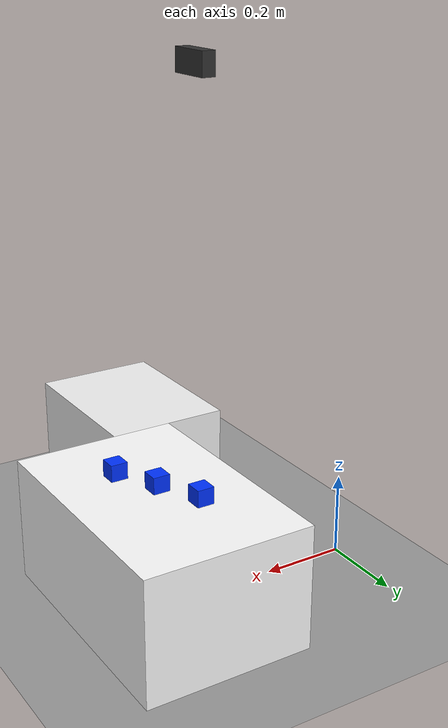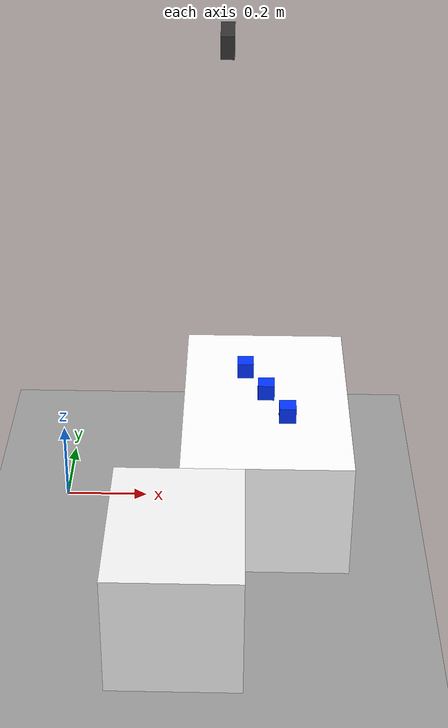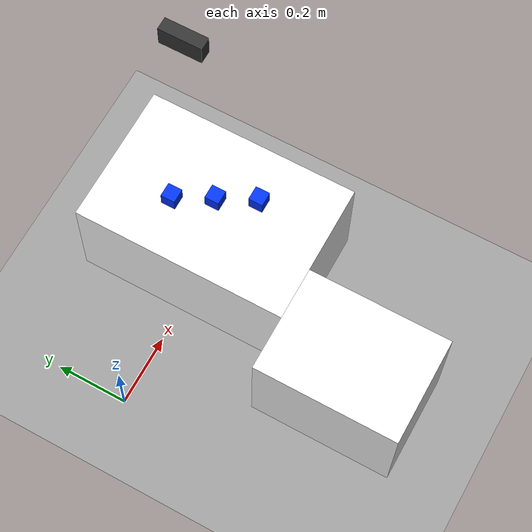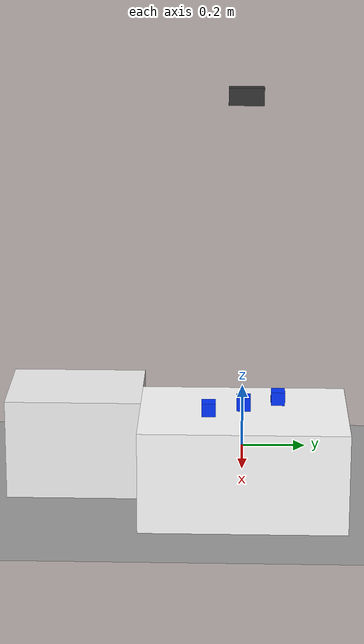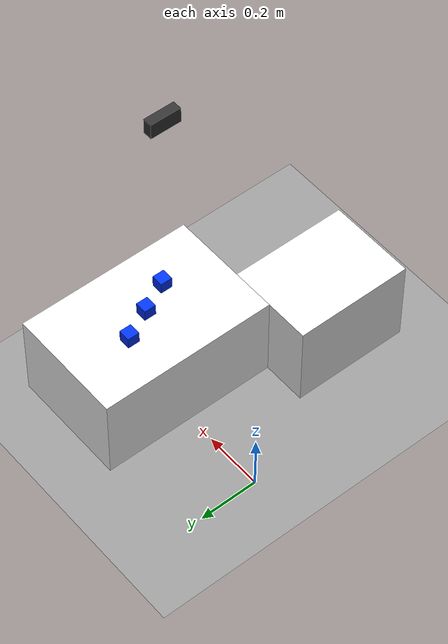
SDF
<?xml version="1.0" ?>
<!--
  Pick and Place World for ME5250 Bin Picking Project
  Abdul Rahman - Northeastern University
-->
<sdf version='1.10'>
  <world name='pick_place_world'>
    <physics name='1ms' type='ignored'>
      <max_step_size>0.001</max_step_size>
      <real_time_factor>1</real_time_factor>
      <real_time_update_rate>1000</real_time_update_rate>
    </physics>
    <plugin name='gz::sim::systems::Physics' filename='gz-sim-physics-system'/>
    <plugin name='gz::sim::systems::UserCommands' filename='gz-sim-user-commands-system'/>
    <plugin name='gz::sim::systems::SceneBroadcaster' filename='gz-sim-scene-broadcaster-system'/>
    <plugin name='gz::sim::systems::Contact' filename='gz-sim-contact-system'/>
    <plugin filename="gz-sim-sensors-system" name="gz::sim::systems::Sensors">
      <render_engine>ogre2</render_engine>
    </plugin>

    <gravity>0 0 -9.8</gravity>
    <magnetic_field>5.5645e-06 2.28758e-05 -4.23884e-05</magnetic_field>
    <atmosphere type='adiabatic'/>

    <scene>
      <ambient>0.4 0.4 0.4 1</ambient>
      <background>0.7 0.7 0.7 1</background>
      <shadows>true</shadows>
    </scene>

    <!-- Ground Plane -->
    <model name='ground_plane'>
      <static>true</static>
      <link name='link'>
        <collision name='collision'>
          <geometry>
            <plane>
              <normal>0 0 1</normal>
              <size>5 5</size>
            </plane>
          </geometry>
          <surface>
            <friction>
              <ode>
                <mu>1.0</mu>
                <mu2>1.0</mu2>
              </ode>
            </friction>
          </surface>
        </collision>
        <visual name='visual'>
          <geometry>
            <plane>
              <normal>0 0 1</normal>
              <size>5 5</size>
            </plane>
          </geometry>
          <material>
            <ambient>0.5 0.5 0.5 1</ambient>
            <diffuse>0.6 0.6 0.6 1</diffuse>
          </material>
        </visual>
      </link>
    </model>

    <!-- Sun -->
    <light name='sun' type='directional'>
      <pose>0 0 10 0 0 0</pose>
      <cast_shadows>true</cast_shadows>
      <intensity>1</intensity>
      <direction>-0.5 0.1 -0.9</direction>
      <diffuse>0.8 0.8 0.8 1</diffuse>
      <specular>0.2 0.2 0.2 1</specular>
      <attenuation>
        <range>1000</range>
        <linear>0.01</linear>
        <constant>0.9</constant>
        <quadratic>0.001</quadratic>
      </attenuation>
    </light>

    <!-- Pick Table (low, white, in front of robot) -->
    <model name='pick_table'>
      <static>true</static>
      <pose>0.5 0 0.15 0 0 0</pose>
      <link name='table_link'>
        <collision name='collision'>
          <geometry>
            <box>
              <size>0.4 0.6 0.3</size>
            </box>
          </geometry>
        </collision>
        <visual name='visual'>
          <geometry>
            <box>
              <size>0.4 0.6 0.3</size>
            </box>
          </geometry>
          <material>
            <ambient>0.9 0.9 0.9 1</ambient>
            <diffuse>1.0 1.0 1.0 1</diffuse>
            <specular>0.1 0.1 0.1 1</specular>
          </material>
        </visual>
      </link>
    </model>

    <!-- Place Table (higher, white, on the right side) -->
    <model name='place_table'>
      <static>true</static>
      <pose>0.3 -0.5 0.15 0 0 0</pose>
      <link name='table_link'>
        <collision name='collision'>
          <geometry>
            <box>
              <size>0.3 0.4 0.3</size>
            </box>
          </geometry>
        </collision>
        <visual name='visual'>
          <geometry>
            <box>
              <size>0.3 0.4 0.3</size>
            </box>
          </geometry>
          <material>
            <ambient>0.85 0.85 0.85 1</ambient>
            <diffuse>0.95 0.95 0.95 1</diffuse>
            <specular>0.1 0.1 0.1 1</specular>
          </material>
        </visual>
      </link>
    </model>

    <!-- Blue Cube 1 -->
    <model name="blue_cube_1">
      <pose>0.45 0.1 0.325 0 0 0</pose>
      <link name="link">
        <inertial>
          <mass>0.1</mass>
          <inertia>
            <ixx>0.000017</ixx>
            <iyy>0.000017</iyy>
            <izz>0.000017</izz>
          </inertia>
        </inertial>
        <collision name="collision">
          <geometry>
            <box>
              <size>0.04 0.04 0.04</size>
            </box>
          </geometry>
          <surface>
            <friction>
              <ode>
                <mu>1.0</mu>
                <mu2>1.0</mu2>
              </ode>
            </friction>
          </surface>
        </collision>
        <visual name="visual">
          <geometry>
            <box>
              <size>0.04 0.04 0.04</size>
            </box>
          </geometry>
          <material>
            <ambient>0.0 0.0 0.8 1</ambient>
            <diffuse>0.0 0.2 1.0 1</diffuse>
          </material>
        </visual>
      </link>
    </model>

    <!-- Blue Cube 2 -->
    <model name="blue_cube_2">
      <pose>0.5 0 0.325 0 0 0</pose>
      <link name="link">
        <inertial>
          <mass>0.1</mass>
          <inertia>
            <ixx>0.000017</ixx>
            <iyy>0.000017</iyy>
            <izz>0.000017</izz>
          </inertia>
        </inertial>
        <collision name="collision">
          <geometry>
            <box>
              <size>0.04 0.04 0.04</size>
            </box>
          </geometry>
          <surface>
            <friction>
              <ode>
                <mu>1.0</mu>
                <mu2>1.0</mu2>
              </ode>
            </friction>
          </surface>
        </collision>
        <visual name="visual">
          <geometry>
            <box>
              <size>0.04 0.04 0.04</size>
            </box>
          </geometry>
          <material>
            <ambient>0.0 0.0 0.8 1</ambient>
            <diffuse>0.0 0.2 1.0 1</diffuse>
          </material>
        </visual>
      </link>
    </model>

    <!-- Blue Cube 3 -->
    <model name="blue_cube_3">
      <pose>0.55 -0.1 0.325 0 0 0</pose>
      <link name="link">
        <inertial>
          <mass>0.1</mass>
          <inertia>
            <ixx>0.000017</ixx>
            <iyy>0.000017</iyy>
            <izz>0.000017</izz>
          </inertia>
        </inertial>
        <collision name="collision">
          <geometry>
            <box>
              <size>0.04 0.04 0.04</size>
            </box>
          </geometry>
          <surface>
            <friction>
              <ode>
                <mu>1.0</mu>
                <mu2>1.0</mu2>
              </ode>
            </friction>
          </surface>
        </collision>
        <visual name="visual">
          <geometry>
            <box>
              <size>0.04 0.04 0.04</size>
            </box>
          </geometry>
          <material>
            <ambient>0.0 0.0 0.8 1</ambient>
            <diffuse>0.0 0.2 1.0 1</diffuse>
          </material>
        </visual>
      </link>
    </model>

    <!-- RGB-D Camera (like Intel RealSense) mounted above workspace -->
    <model name="rgbd_camera">
      <static>true</static>
      <pose>0.4 0 1.2 0 1.57 0</pose>
      <link name="camera_link">
        <inertial>
          <mass>0.1</mass>
          <inertia>
            <ixx>0.0001</ixx>
            <iyy>0.0001</iyy>
            <izz>0.0001</izz>
          </inertia>
        </inertial>
        <collision name="collision">
          <geometry>
            <box>
              <size>0.05 0.1 0.03</size>
            </box>
          </geometry>
        </collision>
        <visual name="visual">
          <geometry>
            <box>
              <size>0.05 0.1 0.03</size>
            </box>
          </geometry>
          <material>
            <ambient>0.1 0.1 0.1 1</ambient>
            <diffuse>0.2 0.2 0.2 1</diffuse>
          </material>
        </visual>

        <!-- RGB Camera -->
        <sensor name="rgb_camera" type="camera">
          <pose>0 0 0 0 0 0</pose>
          <camera>
            <horizontal_fov>1.047</horizontal_fov>
            <image>
              <width>640</width>
              <height>480</height>
              <format>R8G8B8</format>
            </image>
            <clip>
              <near>0.1</near>
              <far>10</far>
            </clip>
          </camera>
          <always_on>1</always_on>
          <update_rate>30</update_rate>
          <visualize>true</visualize>
          <topic>rgbd_camera/image</topic>
        </sensor>

        <!-- Depth Camera -->
        <sensor name="depth_camera" type="depth_camera">
          <pose>0 0 0 0 0 0</pose>
          <camera>
            <horizontal_fov>1.047</horizontal_fov>
            <image>
              <width>640</width>
              <height>480</height>
              <format>R_FLOAT32</format>
            </image>
            <clip>
              <near>0.1</near>
              <far>10</far>
            </clip>
          </camera>
          <always_on>1</always_on>
          <update_rate>30</update_rate>
          <visualize>true</visualize>
          <topic>rgbd_camera/depth</topic>
        </sensor>

        <!-- Point Cloud from Depth -->
        <sensor name="rgbd_sensor" type="rgbd_camera">
          <pose>0 0 0 0 0 0</pose>
          <camera>
            <horizontal_fov>1.047</horizontal_fov>
            <image>
              <width>640</width>
              <height>480</height>
            </image>
            <clip>
              <near>0.1</near>
              <far>10</far>
            </clip>
          </camera>
          <always_on>1</always_on>
          <update_rate>15</update_rate>
          <topic>rgbd_camera/rgbd</topic>
        </sensor>
      </link>
    </model>

  </world>
</sdf>
